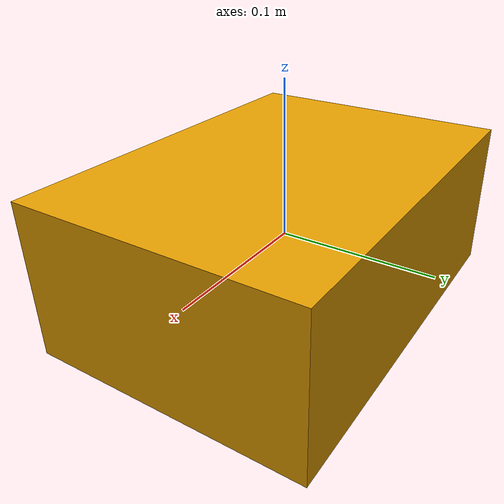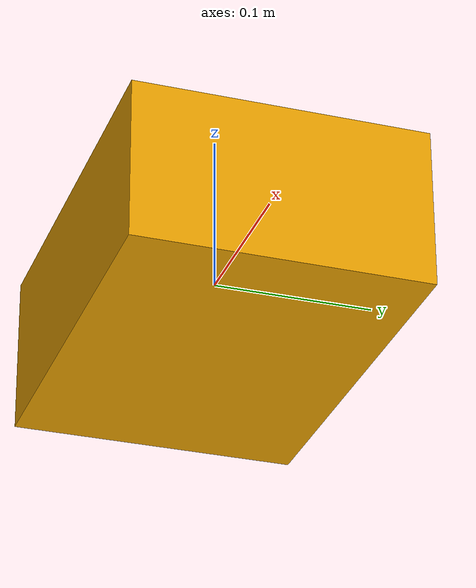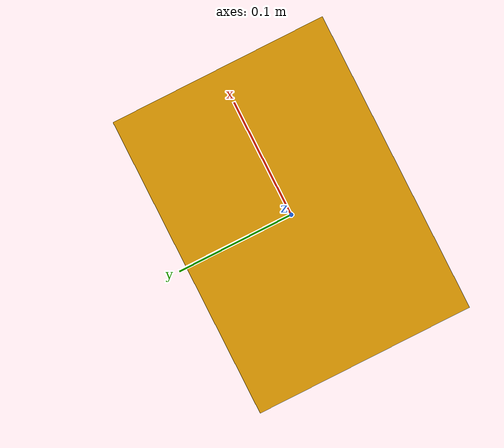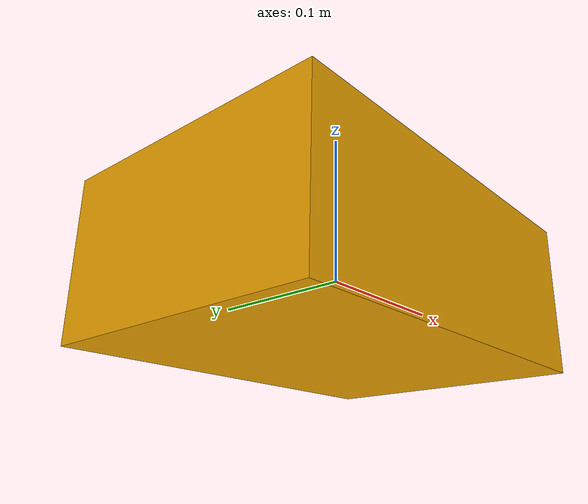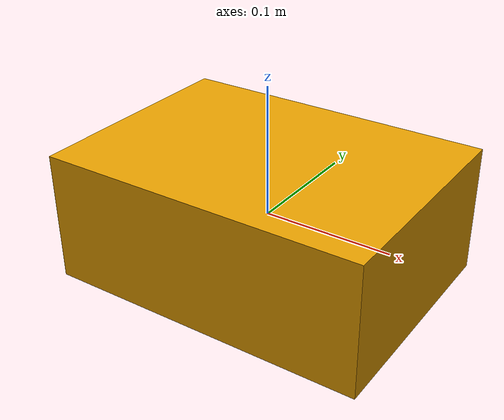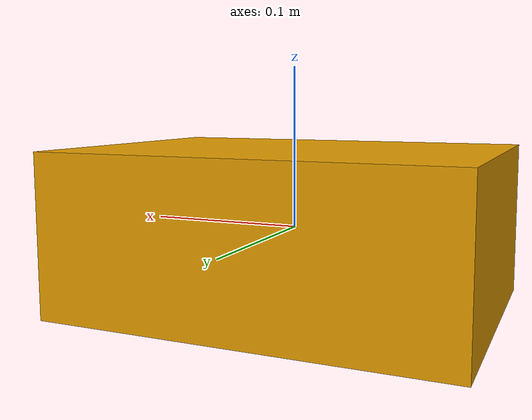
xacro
<?xml version="1.0"?>
<robot xmlns:xacro="http://www.ros.org/wiki/xacro" name="my_robot">

<link name="base_link">
  <visual>
    <geometry>
      <box size="0.25 0.18 0.1"/> </geometry>
  </visual>
  <collision> <geometry>
      <box size="0.25 0.18 0.1"/>
    </geometry>
  </collision>
</link>
</robot>
